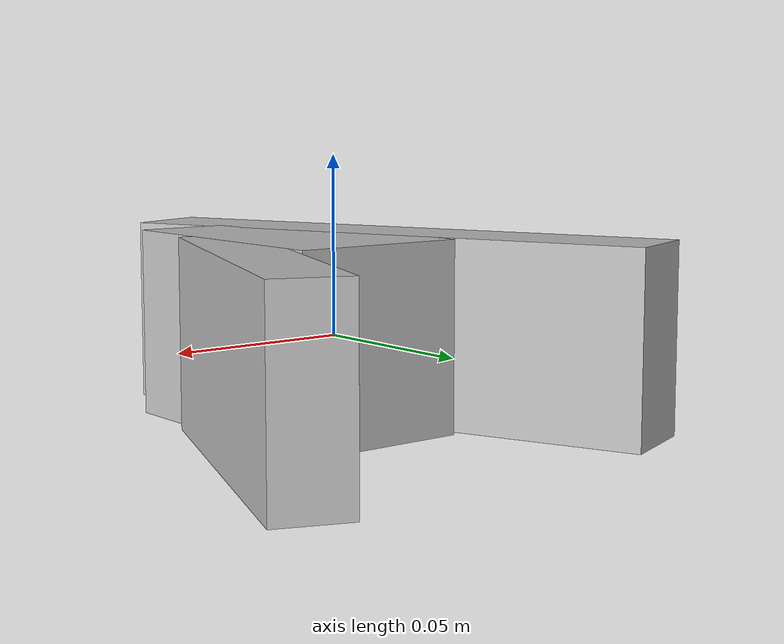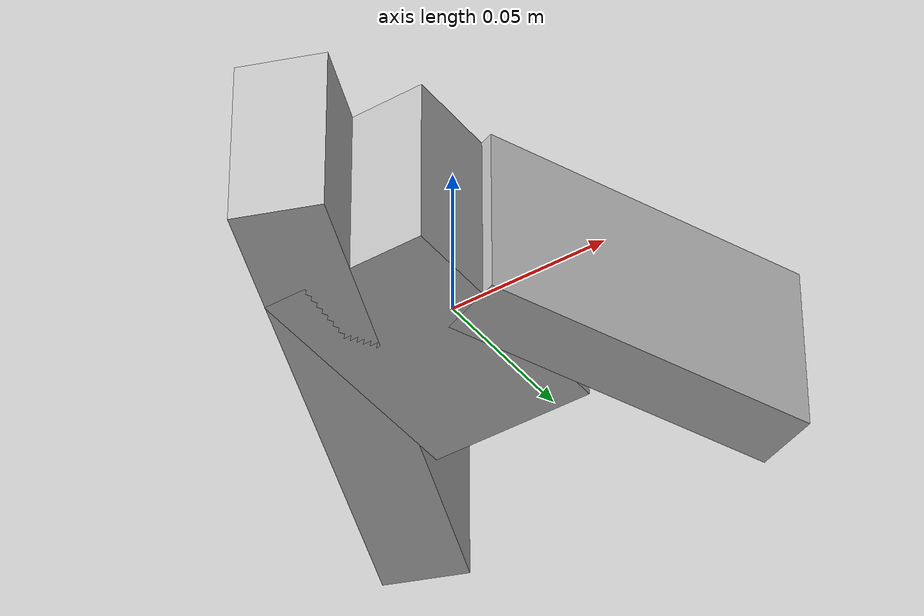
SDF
<?xml version="1.0"?>
<sdf version="1.7">
  <model name="A_shape_video">
    <link name="A_shape_video">
      <inertial>
        <pose>-0.001197 -0.004024 0.000100 0 0 0</pose>
        <mass>0.05</mass>
        <inertia>
          <ixx>8.31454623e-05</ixx>
          <iyy>5.86320345e-05</iyy>
          <izz>0.000117223844</izz>
          <ixy>-2.56811559e-06</ixy>
          <ixz>5.98374425e-09</ixz>
          <iyz>2.0121182e-08</iyz>
        </inertia>
      </inertial>
      <visual name="box_0">
        <pose>0.002730 -0.015370 0.000100 0 0 -1.570800</pose>
        <geometry>
          <box><size>0.080000 0.051000 0.054280</size></box>
        </geometry>
        <material>
          <diffuse>0.75 0.75 0.75 1</diffuse>
        </material>
      </visual>
      <collision name="box_0_volume">
        <pose>0.002730 -0.015370 0.000100 0 0 -1.570800</pose>
        <geometry>
          <box><size>0.080000 0.051000 0.054280</size></box>
        </geometry>
        <drake:proximity_properties>
          <drake:compliant_hydroelastic/>
          <drake:hydroelastic_modulus> 3.0e7 </drake:hydroelastic_modulus>
          <drake:mesh_resolution_hint> 0.02 </drake:mesh_resolution_hint>
          <drake:hunt_crossley_dissipation>10</drake:hunt_crossley_dissipation>
          <drake:mu_dynamic>0.3</drake:mu_dynamic>
        </drake:proximity_properties>
      </collision>
      <visual name="box_1">
        <pose>-0.027190 -0.008060 0.000100 0 0 -1.197730</pose>
        <geometry>
          <box><size>0.164500 0.026000 0.054280</size></box>
        </geometry>
        <material>
          <diffuse>0.75 0.75 0.75 1</diffuse>
        </material>
      </visual>
      <collision name="box_1_volume">
        <pose>-0.027190 -0.008060 0.000100 0 0 -1.197730</pose>
        <geometry>
          <box><size>0.164500 0.026000 0.054280</size></box>
        </geometry>
        <drake:proximity_properties>
          <drake:compliant_hydroelastic/>
          <drake:hydroelastic_modulus> 3.0e7 </drake:hydroelastic_modulus>
          <drake:mesh_resolution_hint> 0.02 </drake:mesh_resolution_hint>
          <drake:hunt_crossley_dissipation>10</drake:hunt_crossley_dissipation>
          <drake:mu_dynamic>0.3</drake:mu_dynamic>
        </drake:proximity_properties>
      </collision>
      <visual name="box_2">
        <pose>0.041960 0.024800 0.000100 0 0 1.197730</pose>
        <geometry>
          <box><size>0.106000 0.020800 0.054280</size></box>
        </geometry>
        <material>
          <diffuse>0.75 0.75 0.75 1</diffuse>
        </material>
      </visual>
      <collision name="box_2_volume">
        <pose>0.041960 0.024800 0.000100 0 0 1.197730</pose>
        <geometry>
          <box><size>0.106000 0.020800 0.054280</size></box>
        </geometry>
        <drake:proximity_properties>
          <drake:compliant_hydroelastic/>
          <drake:hydroelastic_modulus> 3.0e7 </drake:hydroelastic_modulus>
          <drake:mesh_resolution_hint> 0.02 </drake:mesh_resolution_hint>
          <drake:hunt_crossley_dissipation>10</drake:hunt_crossley_dissipation>
          <drake:mu_dynamic>0.3</drake:mu_dynamic>
        </drake:proximity_properties>
      </collision>
    </link>
  </model>
</sdf>
